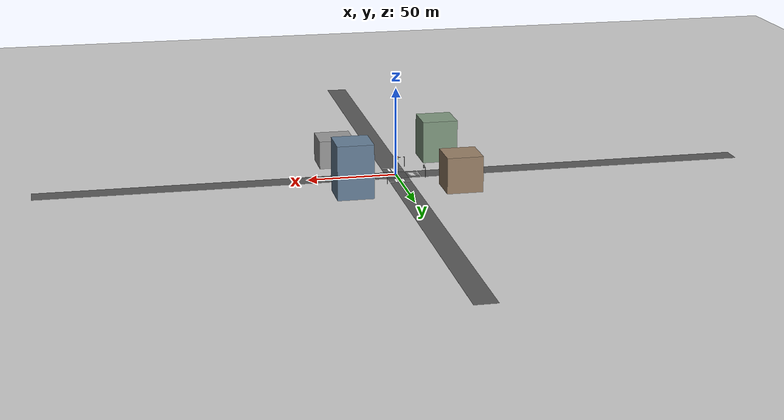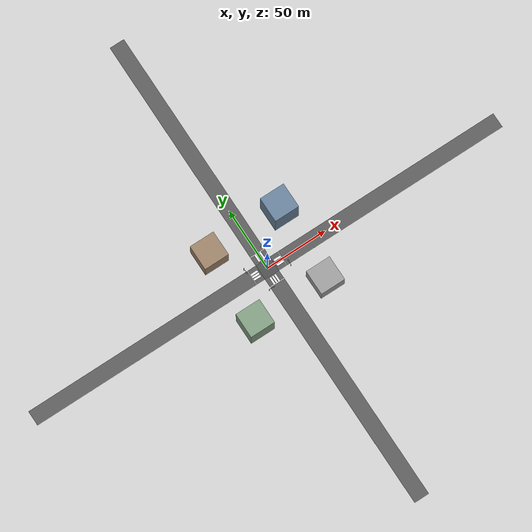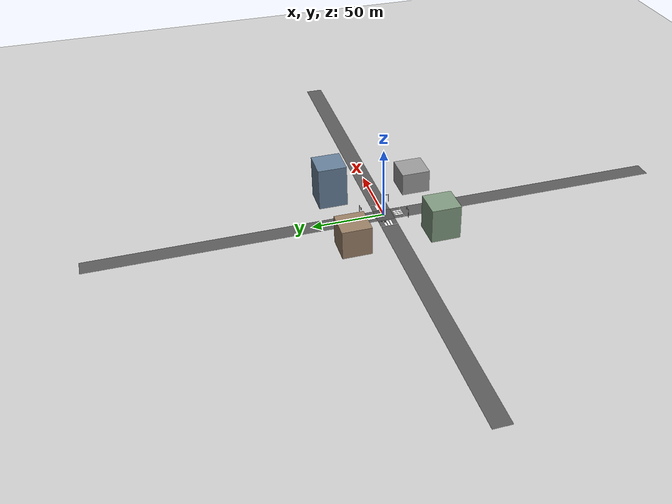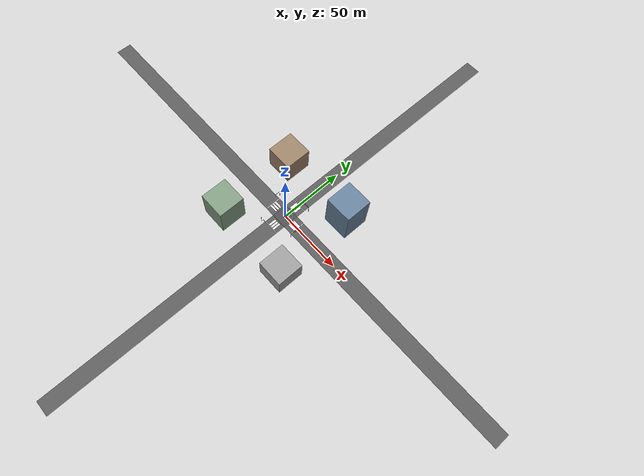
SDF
<sdf version="1.8">
 <world name="intersection_world">
  <physics name="1ms" type="ignored">
   <max_step_size>0.001</max_step_size>
   <real_time_factor>1.0</real_time_factor>
  </physics>
  <plugin filename="gz-sim-physics-system" name="gz::sim::systems::Physics"/>
  <plugin filename="gz-sim-user-commands-system" name="gz::sim::systems::UserCommands"/>
  <plugin filename="gz-sim-scene-broadcaster-system" name="gz::sim::systems::SceneBroadcaster"/>
  <plugin filename="gz-sim-sensors-system" name="gz::sim::systems::Sensors">
   <render_engine>ogre2</render_engine>
  </plugin>
  <light type="directional" name="sun">
   <pose>0 0 10 0 0 0</pose>
   <diffuse>0.8 0.8 0.8 1</diffuse>
   <specular>0.2 0.2 0.2 1</specular>
   <direction>-0.5 0.1 -0.9</direction>
  </light>
  <model name="ground_plane">
   <static>true</static>
   <link name="link">
    <collision name="collision">
     <geometry><plane><normal>0 0 1</normal><size>400 400</size></plane></geometry>
    </collision>
    <visual name="visual">
     <geometry><plane><normal>0 0 1</normal><size>400 400</size></plane></geometry>
     <material>
      <ambient>0.8 0.8 0.8 1</ambient>
      <diffuse>0.8 0.8 0.8 1</diffuse>
      <specular>0.8 0.8 0.8 1</specular>
     </material>
    </visual>
   </link>
  </model>
  <model name="intersection_base">
   <static>true</static>
   <pose>0 0 0.01 0 0 0</pose>
   <link name="link">
    <visual name="road_ns">
     <geometry><box><size>12 400 0.01</size></box></geometry>
     <material><ambient>0.35 0.35 0.35 1</ambient><diffuse>0.35 0.35 0.35 1</diffuse></material>
    </visual>
    <visual name="road_ew">
     <pose>0 0 0 0 0 1.5707</pose>
     <geometry><box><size>12 400 0.01</size></box></geometry>
     <material><ambient>0.35 0.35 0.35 1</ambient><diffuse>0.35 0.35 0.35 1</diffuse></material>
    </visual>
    <visual name="center_marking">
     <geometry><box><size>12 12 0.011</size></box></geometry>
     <material><ambient>0.3 0.3 0.3 1</ambient><diffuse>0.3 0.3 0.3 1</diffuse></material>
    </visual>
    <visual name="cw_n_1">
     <pose>2 10 0.012 0 0 0</pose>
     <geometry><box><size>1.5 6 0.01</size></box></geometry>
     <material><ambient>1 1 1 1</ambient><diffuse>1 1 1 1</diffuse></material>
    </visual>
    <visual name="cw_n_2">
     <pose>0 10 0.012 0 0 0</pose>
     <geometry><box><size>1.5 6 0.01</size></box></geometry>
     <material><ambient>1 1 1 1</ambient><diffuse>1 1 1 1</diffuse></material>
    </visual>
    <visual name="cw_n_3">
     <pose>-2 10 0.012 0 0 0</pose>
     <geometry><box><size>1.5 6 0.01</size></box></geometry>
     <material><ambient>1 1 1 1</ambient><diffuse>1 1 1 1</diffuse></material>
    </visual>
    <visual name="cw_s_1">
     <pose>2 -10 0.012 0 0 0</pose>
     <geometry><box><size>1.5 6 0.01</size></box></geometry>
     <material><ambient>1 1 1 1</ambient><diffuse>1 1 1 1</diffuse></material>
    </visual>
    <visual name="cw_s_2">
     <pose>0 -10 0.012 0 0 0</pose>
     <geometry><box><size>1.5 6 0.01</size></box></geometry>
     <material><ambient>1 1 1 1</ambient><diffuse>1 1 1 1</diffuse></material>
    </visual>
    <visual name="cw_s_3">
     <pose>-2 -10 0.012 0 0 0</pose>
     <geometry><box><size>1.5 6 0.01</size></box></geometry>
     <material><ambient>1 1 1 1</ambient><diffuse>1 1 1 1</diffuse></material>
    </visual>
    <visual name="cw_e_1">
     <pose>10 2 0.012 0 0 1.5707</pose>
     <geometry><box><size>1.5 6 0.01</size></box></geometry>
     <material><ambient>1 1 1 1</ambient><diffuse>1 1 1 1</diffuse></material>
    </visual>
    <visual name="cw_e_2">
     <pose>10 0 0.012 0 0 1.5707</pose>
     <geometry><box><size>1.5 6 0.01</size></box></geometry>
     <material><ambient>1 1 1 1</ambient><diffuse>1 1 1 1</diffuse></material>
    </visual>
    <visual name="cw_e_3">
     <pose>10 -2 0.012 0 0 1.5707</pose>
     <geometry><box><size>1.5 6 0.01</size></box></geometry>
     <material><ambient>1 1 1 1</ambient><diffuse>1 1 1 1</diffuse></material>
    </visual>
    <visual name="cw_w_1">
     <pose>-10 2 0.012 0 0 1.5707</pose>
     <geometry><box><size>1.5 6 0.01</size></box></geometry>
     <material><ambient>1 1 1 1</ambient><diffuse>1 1 1 1</diffuse></material>
    </visual>
    <visual name="cw_w_2">
     <pose>-10 0 0.012 0 0 1.5707</pose>
     <geometry><box><size>1.5 6 0.01</size></box></geometry>
     <material><ambient>1 1 1 1</ambient><diffuse>1 1 1 1</diffuse></material>
    </visual>
    <visual name="cw_w_3">
     <pose>-10 -2 0.012 0 0 1.5707</pose>
     <geometry><box><size>1.5 6 0.01</size></box></geometry>
     <material><ambient>1 1 1 1</ambient><diffuse>1 1 1 1</diffuse></material>
    </visual>
    <visual name="stop_n">
     <pose>0 13 0.013 0 0 0</pose>
     <geometry><box><size>12 0.5 0.01</size></box></geometry>
     <material><ambient>1 1 1 1</ambient><diffuse>1 1 1 1</diffuse></material>
    </visual>
    <visual name="stop_s">
     <pose>0 -13 0.013 0 0 0</pose>
     <geometry><box><size>12 0.5 0.01</size></box></geometry>
     <material><ambient>1 1 1 1</ambient><diffuse>1 1 1 1</diffuse></material>
    </visual>
    <visual name="stop_e">
     <pose>13 0 0.013 0 0 1.5707</pose>
     <geometry><box><size>12 0.5 0.01</size></box></geometry>
     <material><ambient>1 1 1 1</ambient><diffuse>1 1 1 1</diffuse></material>
    </visual>
    <visual name="stop_w">
     <pose>-13 0 0.013 0 0 1.5707</pose>
     <geometry><box><size>12 0.5 0.01</size></box></geometry>
     <material><ambient>1 1 1 1</ambient><diffuse>1 1 1 1</diffuse></material>
    </visual>
   </link>
  </model>
  <model name="intersection_camera">
   <static>true</static>
   <pose>0 0 15 0 1.5707 0</pose>
   <link name="link">
    <sensor name="camera" type="camera">
     <camera>
      <horizontal_fov>1.047</horizontal_fov>
      <image><width>640</width><height>480</height></image>
      <clip><near>0.1</near><far>100</far></clip>
     </camera>
     <always_on>1</always_on>
     <update_rate>10</update_rate>
     <visualize>true</visualize>
     <topic>camera</topic>
    </sensor>
   </link>
  </model>
  <include>
   <uri>model://detailed_traffic_light</uri>
   <name>tl_north</name>
   <pose>8 15 0 0 0 3.1415</pose>
  </include>
  <include><uri>model://detailed_traffic_light</uri><name>tl_south</name><pose>-8 -15 0 0 0 0</pose></include>
  <include>
   <uri>model://detailed_traffic_light</uri>
   <name>tl_east</name>
   <pose>15 -8 0 0 0 1.5707</pose>
  </include>
  <include>
   <uri>model://detailed_traffic_light</uri>
   <name>tl_west</name>
   <pose>-15 8 0 0 0 -1.5707</pose>
  </include>
  <model name="sensor_pedestrian_north">
   <static>true</static>
   <pose>0 10.5 8 0 1.5707 0</pose>
   <link name="link">
    <sensor name="logical_camera" type="logical_camera">
     <logical_camera>
      <near>1</near>
      <far>12</far>
      <horizontal_fov>1.2</horizontal_fov>
      <aspect_ratio>1.5</aspect_ratio>
     </logical_camera>
     <visualize>true</visualize>
     <update_rate>10</update_rate>
     <topic>sensors/pedestrian_north</topic>
    </sensor>
   </link>
  </model>
  <model name="sensor_pedestrian_south">
   <static>true</static>
   <pose>0 -10.5 8 0 1.5707 0</pose>
   <link name="link">
    <sensor name="logical_camera" type="logical_camera">
     <logical_camera>
      <near>1</near>
      <far>12</far>
      <horizontal_fov>1.2</horizontal_fov>
      <aspect_ratio>1.5</aspect_ratio>
     </logical_camera>
     <visualize>true</visualize>
     <update_rate>10</update_rate>
     <topic>sensors/pedestrian_south</topic>
    </sensor>
   </link>
  </model>
  <model name="sensor_pedestrian_east">
   <static>true</static>
   <pose>10.5 0 8 0 1.5707 0</pose>
   <link name="link">
    <sensor name="logical_camera" type="logical_camera">
     <logical_camera>
      <near>1</near>
      <far>12</far>
      <horizontal_fov>1.2</horizontal_fov>
      <aspect_ratio>1.5</aspect_ratio>
     </logical_camera>
     <visualize>true</visualize>
     <update_rate>10</update_rate>
     <topic>sensors/pedestrian_east</topic>
    </sensor>
   </link>
  </model>
  <model name="sensor_pedestrian_west">
   <static>true</static>
   <pose>-10.5 0 8 0 1.5707 0</pose>
   <link name="link">
    <sensor name="logical_camera" type="logical_camera">
     <logical_camera>
      <near>1</near>
      <far>12</far>
      <horizontal_fov>1.2</horizontal_fov>
      <aspect_ratio>1.5</aspect_ratio>
     </logical_camera>
     <visualize>true</visualize>
     <update_rate>10</update_rate>
     <topic>sensors/pedestrian_west</topic>
    </sensor>
   </link>
  </model>
  <model name="sensor_north_road">
   <static>true</static>
   <pose>0 20 10 0 1.5707 0</pose>
   <link name="link">
    <sensor name="logical_camera" type="logical_camera">
     <logical_camera>
      <near>0.1</near>
      <far>50</far>
      <horizontal_fov>2.0</horizontal_fov>
      <aspect_ratio>2</aspect_ratio>
     </logical_camera>
     <visualize>true</visualize>
     <update_rate>10</update_rate>
     <always_on>true</always_on>
    </sensor>
   </link>
  </model>
  <model name="sensor_south_road">
   <static>true</static>
   <pose>0 -20 10 0 1.5707 0</pose>
   <link name="link">
    <sensor name="logical_camera" type="logical_camera">
     <logical_camera>
      <near>0.1</near>
      <far>50</far>
      <horizontal_fov>2.0</horizontal_fov>
      <aspect_ratio>2</aspect_ratio>
     </logical_camera>
     <visualize>true</visualize>
     <update_rate>10</update_rate>
     <always_on>true</always_on>
    </sensor>
   </link>
  </model>
  <model name="sensor_east_road">
   <static>true</static>
   <pose>20 0 10 0 1.5707 0</pose>
   <link name="link">
    <sensor name="logical_camera" type="logical_camera">
     <logical_camera>
      <near>0.1</near>
      <far>50</far>
      <horizontal_fov>2.0</horizontal_fov>
      <aspect_ratio>2</aspect_ratio>
     </logical_camera>
     <visualize>true</visualize>
     <update_rate>10</update_rate>
     <always_on>true</always_on>
    </sensor>
   </link>
  </model>
  <model name="sensor_west_road">
   <static>true</static>
   <pose>-20 0 10 0 1.5707 0</pose>
   <link name="link">
    <sensor name="logical_camera" type="logical_camera">
     <logical_camera>
      <near>0.1</near>
      <far>50</far>
      <horizontal_fov>2.0</horizontal_fov>
      <aspect_ratio>2</aspect_ratio>
     </logical_camera>
     <visualize>true</visualize>
     <update_rate>10</update_rate>
     <always_on>true</always_on>
    </sensor>
   </link>
  </model>
  <model name="sensor_intersection_zone">
   <static>true</static>
   <pose>0 0 20 0 1.5707 0</pose>
   <link name="link">
    <sensor name="logical_camera" type="logical_camera">
     <logical_camera>
      <near>1</near>
      <far>25</far>
      <horizontal_fov>1.2</horizontal_fov>
      <aspect_ratio>1</aspect_ratio>
     </logical_camera>
     <visualize>true</visualize>
     <update_rate>10</update_rate>
     <topic>sensors/intersection_zone</topic>
    </sensor>
   </link>
  </model>
  <model name="building_nw">
   <static>true</static>
   <pose>-30 30 10 0 0 0</pose>
   <link name="link">
    <visual name="visual">
     <geometry><box><size>20 20 20</size></box></geometry>
     <material><ambient>0.6 0.5 0.4 1</ambient><diffuse>0.6 0.5 0.4 1</diffuse></material>
    </visual>
   </link>
  </model>
  <model name="building_ne">
   <static>true</static>
   <pose>30 30 15 0 0 0</pose>
   <link name="link">
    <visual name="visual">
     <geometry><box><size>20 20 30</size></box></geometry>
     <material><ambient>0.4 0.5 0.6 1</ambient><diffuse>0.4 0.5 0.6 1</diffuse></material>
    </visual>
   </link>
  </model>
  <model name="building_sw">
   <static>true</static>
   <pose>-30 -30 12 0 0 0</pose>
   <link name="link">
    <visual name="visual">
     <geometry><box><size>20 20 24</size></box></geometry>
     <material><ambient>0.5 0.6 0.5 1</ambient><diffuse>0.5 0.6 0.5 1</diffuse></material>
    </visual>
   </link>
  </model>
  <model name="building_se">
   <static>true</static>
   <pose>30 -30 8 0 0 0</pose>
   <link name="link">
    <visual name="visual">
     <geometry><box><size>20 20 16</size></box></geometry>
     <material><ambient>0.6 0.6 0.6 1</ambient><diffuse>0.6 0.6 0.6 1</diffuse></material>
    </visual>
   </link>
  </model>
 </world>
</sdf>

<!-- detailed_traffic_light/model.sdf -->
<sdf version="1.8">
  <model name="detailed_traffic_light">
    <static>true</static>

    <!-- Vertical Pole -->
    <link name="pole">
      <pose>0 0 3 0 0 0</pose>
      <visual name="pole_visual">
        <geometry><cylinder><radius>0.15</radius><length>6.0</length></cylinder></geometry>
        <material>
          <ambient>0.2 0.2 0.2 1</ambient>
          <diffuse>0.2 0.2 0.2 1</diffuse>
          <specular>0.5 0.5 0.5 1</specular>
        </material>
      </visual>
      <collision name="pole_collision">
        <geometry><cylinder><radius>0.15</radius><length>6.0</length></cylinder></geometry>
      </collision>
    </link>

    <!-- Horizontal Arm -->
    <link name="arm">
      <pose>2.0 0 5.8 0 1.5707 0</pose>
      <visual name="arm_visual">
        <geometry><cylinder><radius>0.1</radius><length>4.0</length></cylinder></geometry>
        <material>
          <ambient>0.2 0.2 0.2 1</ambient>
          <diffuse>0.2 0.2 0.2 1</diffuse>
        </material>
      </visual>
    </link>

    <!-- Light Housing (Rotated 90 degrees to face traffic) -->
    <link name="housing">
      <pose>4.0 0 5.4 0 0 1.5708</pose>
      <visual name="housing_visual">
        <geometry><box><size>0.6 0.6 1.8</size></box></geometry>
        <material>
          <ambient>0.05 0.05 0.05 1</ambient>
          <diffuse>0.05 0.05 0.05 1</diffuse>
        </material>
      </visual>

      <!-- Red Light Visual -->
      <visual name="red_light">
        <pose>0.31 0 0.6 0 1.5707 0</pose>
        <geometry><cylinder><radius>0.2</radius><length>0.05</length></cylinder></geometry>
        <material>
          <ambient>1 0 0 1</ambient>
          <diffuse>1 0 0 1</diffuse>
          <emissive>1 0 0 1</emissive>
        </material>
      </visual>
      <light name="red_lamp" type="point">
        <pose>0.4 0 0.6 0 0 0</pose>
        <attenuation>
          <range>5</range>
          <linear>0.05</linear>
        </attenuation>
        <diffuse>1 0 0 1</diffuse>
        <specular>1 0 0 1</specular>
        <intensity>0</intensity>
      </light>

      <!-- Yellow Light Visual -->
      <visual name="yellow_light">
        <pose>0.31 0 0 0 1.5707 0</pose>
        <geometry><cylinder><radius>0.2</radius><length>0.05</length></cylinder></geometry>
        <material>
          <ambient>1 1 0 1</ambient>
          <diffuse>1 1 0 1</diffuse>
          <emissive>1 1 0 1</emissive>
        </material>
      </visual>
      <light name="yellow_lamp" type="point">
        <pose>0.4 0 0 0 0 0</pose>
        <attenuation>
          <range>5</range>
          <linear>0.05</linear>
        </attenuation>
        <diffuse>1 1 0 1</diffuse>
        <specular>1 1 0 1</specular>
        <intensity>0</intensity>
      </light>

      <!-- Green Light Visual -->
      <visual name="green_light">
        <pose>0.31 0 -0.6 0 1.5707 0</pose>
        <geometry><cylinder><radius>0.2</radius><length>0.05</length></cylinder></geometry>
        <material>
          <ambient>0 1 0 1</ambient>
          <diffuse>0 1 0 1</diffuse>
          <emissive>0 1 0 1</emissive>
        </material>
      </visual>
      <light name="green_lamp" type="point">
        <pose>0.4 0 -0.6 0 0 0</pose>
        <attenuation>
          <range>5</range>
          <linear>0.05</linear>
        </attenuation>
        <diffuse>0 1 0 1</diffuse>
        <specular>0 1 0 1</specular>
        <intensity>1</intensity>
      </light>
    </link>
  </model>
</sdf>
